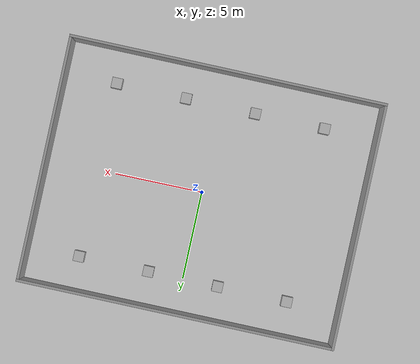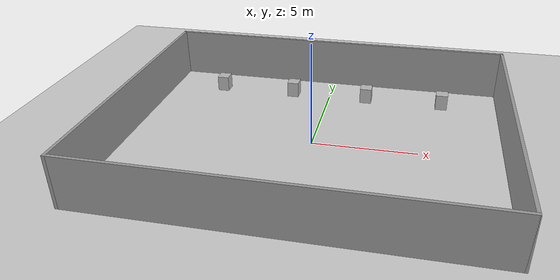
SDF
<sdf version='1.7'>
  <world name='default'>
    <light name='sun' type='directional'>
      <cast_shadows>1</cast_shadows>
      <pose>0 0 10 0 -0 0</pose>
      <diffuse>0.8 0.8 0.8 1</diffuse>
      <specular>0.2 0.2 0.2 1</specular>
      <attenuation>
        <range>1000</range>
        <constant>0.9</constant>
        <linear>0.01</linear>
        <quadratic>0.001</quadratic>
      </attenuation>
      <direction>-0.5 0.1 -0.9</direction>
      <spot>
        <inner_angle>0</inner_angle>
        <outer_angle>0</outer_angle>
        <falloff>0</falloff>
      </spot>
    </light>
    <model name='ground_plane'>
      <static>1</static>
      <link name='link'>
        <collision name='collision'>
          <geometry>
            <plane>
              <normal>0 0 1</normal>
              <size>100 100</size>
            </plane>
          </geometry>
          <surface>
            <contact>
              <collide_bitmask>65535</collide_bitmask>
              <ode/>
            </contact>
            <friction>
              <ode>
                <mu>100</mu>
                <mu2>50</mu2>
              </ode>
              <torsional>
                <ode/>
              </torsional>
            </friction>
            <bounce/>
          </surface>
          <max_contacts>10</max_contacts>
        </collision>
        <visual name='visual'>
          <cast_shadows>0</cast_shadows>
          <geometry>
            <plane>
              <normal>0 0 1</normal>
              <size>100 100</size>
            </plane>
          </geometry>
          <material>
            <script>
              <uri>file://media/materials/scripts/gazebo.material</uri>
              <name>Gazebo/Grey</name>
            </script>
          </material>
        </visual>
        <self_collide>0</self_collide>
        <enable_wind>0</enable_wind>
        <kinematic>0</kinematic>
      </link>
    </model>
    <gravity>0 0 -9.8</gravity>
    <magnetic_field>6e-06 2.3e-05 -4.2e-05</magnetic_field>
    <atmosphere type='adiabatic'/>
    <physics type='ode'>
      <max_step_size>0.001</max_step_size>
      <real_time_factor>1</real_time_factor>
      <real_time_update_rate>1000</real_time_update_rate>
    </physics>
    <scene>
      <ambient>0.4 0.4 0.4 1</ambient>
      <background>0.7 0.7 0.7 1</background>
      <shadows>1</shadows>
    </scene>
    <wind/>
    <spherical_coordinates>
      <surface_model>EARTH_WGS84</surface_model>
      <latitude_deg>0</latitude_deg>
      <longitude_deg>0</longitude_deg>
      <elevation>0</elevation>
      <heading_deg>0</heading_deg>
    </spherical_coordinates>
    <model name='Teknofest_fabrika_alanı'>
      <pose>0 0 0 0 -0 0</pose>
      <static>true</static>
      <link name='Wall_2'>
        <collision name='Wall_2_Collision'>
          <geometry>
            <box>
              <size>18 0.15 2.5</size>
            </box>
          </geometry>
          <pose>0 0 1.25 0 -0 0</pose>
        </collision>
        <visual name='Wall_2_Visual'>
          <pose>0 0 1.25 0 -0 0</pose>
          <geometry>
            <box>
              <size>18 0.15 2.5</size>
            </box>
          </geometry>
          <material>
            <script>
              <uri>file://media/materials/scripts/gazebo.material</uri>
              <name>Gazebo/Grey</name>
            </script>
            <ambient>1 1 1 1</ambient>
          </material>
        </visual>
        <pose>0 -6.925 0 0 -0 0</pose>
      </link>
      <link name='Wall_4'>
        <collision name='Wall_4_Collision'>
          <geometry>
            <box>
              <size>14 0.15 2.5</size>
            </box>
          </geometry>
          <pose>0 0 1.25 0 -0 0</pose>
        </collision>
        <visual name='Wall_4_Visual'>
          <pose>0 0 1.25 0 -0 0</pose>
          <geometry>
            <box>
              <size>14 0.15 2.5</size>
            </box>
          </geometry>
          <material>
            <script>
              <uri>file://media/materials/scripts/gazebo.material</uri>
              <name>Gazebo/Grey</name>
            </script>
            <ambient>1 1 1 1</ambient>
          </material>
        </visual>
        <pose>-8.925 0 0 0 -0 1.5708</pose>
      </link>
      <link name='Wall_6'>
        <collision name='Wall_6_Collision'>
          <geometry>
            <box>
              <size>18 0.15 2.5</size>
            </box>
          </geometry>
          <pose>0 0 1.25 0 -0 0</pose>
        </collision>
        <visual name='Wall_6_Visual'>
          <pose>0 0 1.25 0 -0 0</pose>
          <geometry>
            <box>
              <size>18 0.15 2.5</size>
            </box>
          </geometry>
          <material>
            <script>
              <uri>file://media/materials/scripts/gazebo.material</uri>
              <name>Gazebo/Grey</name>
            </script>
            <ambient>1 1 1 1</ambient>
          </material>
        </visual>
        <pose>0 6.925 0 0 -0 0</pose>
      </link>
      <link name='Wall_7'>
        <collision name='Wall_7_Collision'>
          <geometry>
            <box>
              <size>14 0.15 2.5</size>
            </box>
          </geometry>
          <pose>0 0 1.25 0 -0 0</pose>
        </collision>
        <visual name='Wall_7_Visual'>
          <pose>0 0 1.25 0 -0 0</pose>
          <geometry>
            <box>
              <size>14 0.15 2.5</size>
            </box>
          </geometry>
          <material>
            <script>
              <uri>file://media/materials/scripts/gazebo.material</uri>
              <name>Gazebo/Grey</name>
            </script>
            <ambient>1 1 1 1</ambient>
          </material>
        </visual>
        <pose>8.925 0 0 0 -0 -1.5708</pose>
      </link>
    </model>

    <model name='Istasyon_A1'>
      <static>true</static>
      <pose>-6.0 5.0 0.4 0 0 0</pose>
      <link name='link'>
        <collision name='collision'><geometry><box><size>0.6 0.6 0.8</size></box></geometry></collision>
        <visual name='visual'><geometry><box><size>0.6 0.6 0.8</size></box></geometry></visual>
      </link>
    </model>
    <model name='Istasyon_A2'>
      <static>true</static>
      <pose>6.0 5.0 0.4 0 0 0</pose>
      <link name='link'>
        <collision name='collision'><geometry><box><size>0.6 0.6 0.8</size></box></geometry></collision>
        <visual name='visual'><geometry><box><size>0.6 0.6 0.8</size></box></geometry></visual>
      </link>
    </model>
    <model name='Istasyon_A3'>
      <static>true</static>
      <pose>-6.0 -5.0 0.4 0 0 0</pose>
      <link name='link'>
        <collision name='collision'><geometry><box><size>0.6 0.6 0.8</size></box></geometry></collision>
        <visual name='visual'><geometry><box><size>0.6 0.6 0.8</size></box></geometry></visual>
      </link>
    </model>
    <model name='Istasyon_A4'>
      <static>true</static>
      <pose>6.0 -5.0 0.4 0 0 0</pose>
      <link name='link'>
        <collision name='collision'><geometry><box><size>0.6 0.6 0.8</size></box></geometry></collision>
        <visual name='visual'><geometry><box><size>0.6 0.6 0.8</size></box></geometry></visual>
      </link>
    </model>
    <model name='Istasyon_B1'>
      <static>true</static>
      <pose>-2.0 5.0 0.4 0 0 0</pose>
      <link name='link'>
        <collision name='collision'><geometry><box><size>0.6 0.6 0.8</size></box></geometry></collision>
        <visual name='visual'><geometry><box><size>0.6 0.6 0.8</size></box></geometry></visual>
      </link>
    </model>
    <model name='Istasyon_B2'>
      <static>true</static>
      <pose>2.0 5.0 0.4 0 0 0</pose>
      <link name='link'>
        <collision name='collision'><geometry><box><size>0.6 0.6 0.8</size></box></geometry></collision>
        <visual name='visual'><geometry><box><size>0.6 0.6 0.8</size></box></geometry></visual>
      </link>
    </model>
    <model name='Istasyon_B3'>
      <static>true</static>
      <pose>-2.0 -5.0 0.4 0 0 0</pose>
      <link name='link'>
        <collision name='collision'><geometry><box><size>0.6 0.6 0.8</size></box></geometry></collision>
        <visual name='visual'><geometry><box><size>0.6 0.6 0.8</size></box></geometry></visual>
      </link>
    </model>
    <model name='Istasyon_B4'>
      <static>true</static>
      <pose>2.0 -5.0 0.4 0 0 0</pose>
      <link name='link'>
        <collision name='collision'><geometry><box><size>0.6 0.6 0.8</size></box></geometry></collision>
        <visual name='visual'><geometry><box><size>0.6 0.6 0.8</size></box></geometry></visual>
      </link>
    </model>

    <gui fullscreen='0'>
      <camera name='user_camera'>
        <pose>-0.404351 -1.42284 14.9712 -0 1.35164 1.2082</pose>
        <view_controller>orbit</view_controller>
        <projection_type>perspective</projection_type>
      </camera>
    </gui>
  </world>
</sdf>
